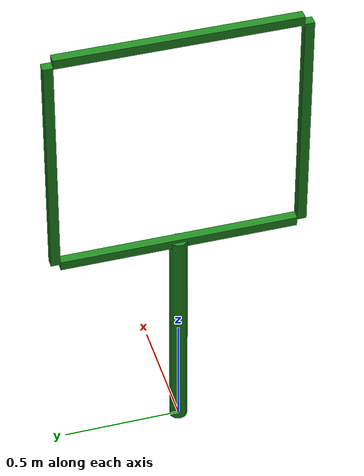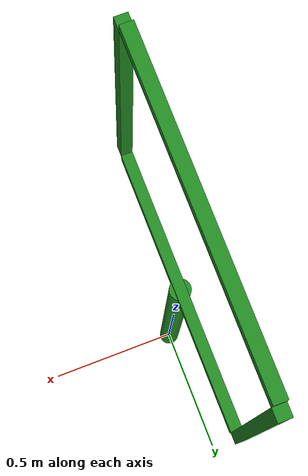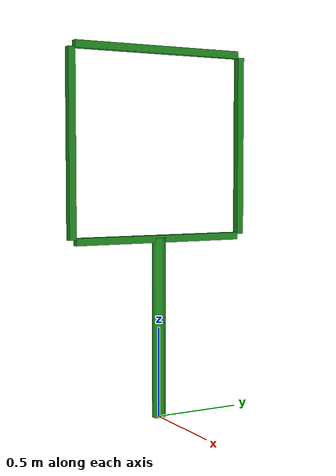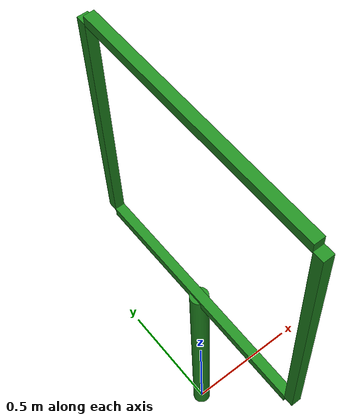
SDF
<?xml version="1.0" ?>
<sdf version="1.8">
<model name="small_window">

        <pose>0 0 0.5 0 0 0</pose>
        <static>true</static>

        <link name="base_ring_link">
            <pose>0 0 0 0 0 0</pose>
            <inertial>
                <mass>1.0</mass>
            </inertial>
            <collision name="collision">
                <geometry>
                    <cylinder>
                        <radius>0.038</radius>
                        <length>1</length>
                    </cylinder>
                </geometry>
            </collision>
            <visual name="visual">
                <geometry>
                    <cylinder>
                        <radius>0.038</radius>
                        <length>1</length>
                    </cylinder>
                </geometry>
                <material>
                    <ambient>0.13 0.55 0.13 1</ambient>
                    <diffuse>0.13 0.55 0.13 1</diffuse>
                    <specular>0.1 0.1 0.1 1</specular>
                </material>
            </visual>
        </link>

        <link name="top_beam">
            <pose>0 0 1.52 0 0 0</pose>
            <visual name="visual">
              <geometry>
                <box><size>0.04 1 0.04</size></box>
              </geometry>
              <material>
                <ambient>0.13 0.55 0.13 1</ambient>
                <diffuse>0.13 0.55 0.13 1</diffuse>
                <specular>0.1 0.1 0.1 1</specular>
              </material>
            </visual>
            <collision name="collision">
              <geometry><box><size>0.04 1 0.04</size></box></geometry>
            </collision>
        </link>

        <link name="bottom_beam">
            <pose>0 0 0.4946 0 0 0</pose>
            <visual name="visual">
              <geometry>
                <box><size>0.04 1 0.04</size></box>
              </geometry>
              <material>
                <ambient>0.13 0.55 0.13 1</ambient>
                <diffuse>0.13 0.55 0.13 1</diffuse>
                <specular>0.1 0.1 0.1 1</specular>
              </material>
            </visual>
            <collision name="collision">
              <geometry><box><size>0.04 1 0.04</size></box></geometry>
            </collision>
        </link>

        <link name="left_beam">
            <pose>0 0.52 1.005 0 0 0</pose>
            <visual name="visual">
              <geometry>
                <box><size>0.04 0.04 1</size></box>
              </geometry>
              <material>
                <ambient>0.13 0.55 0.13 1</ambient>
                <diffuse>0.13 0.55 0.13 1</diffuse>
                <specular>0.1 0.1 0.1 1</specular>
              </material>
            </visual>
            <collision name="collision">
              <geometry><box><size>0.04 0.04 1</size></box></geometry>
            </collision>
        </link>

        <link name="right_beam">
            <pose>0 -0.52 1.005 0 0 0</pose>
            <visual name="visual">
              <geometry>
                <box><size>0.04 0.04 1</size></box>
              </geometry>
              <material>
                <ambient>0.13 0.55 0.13 1</ambient>
                <diffuse>0.13 0.55 0.13 1</diffuse>
                <specular>0.1 0.1 0.1 1</specular>
              </material>
            </visual>
            <collision name="collision">
              <geometry><box><size>0.04 0.04 1</size></box></geometry>
            </collision>
        </link>
    </model>
</sdf>
